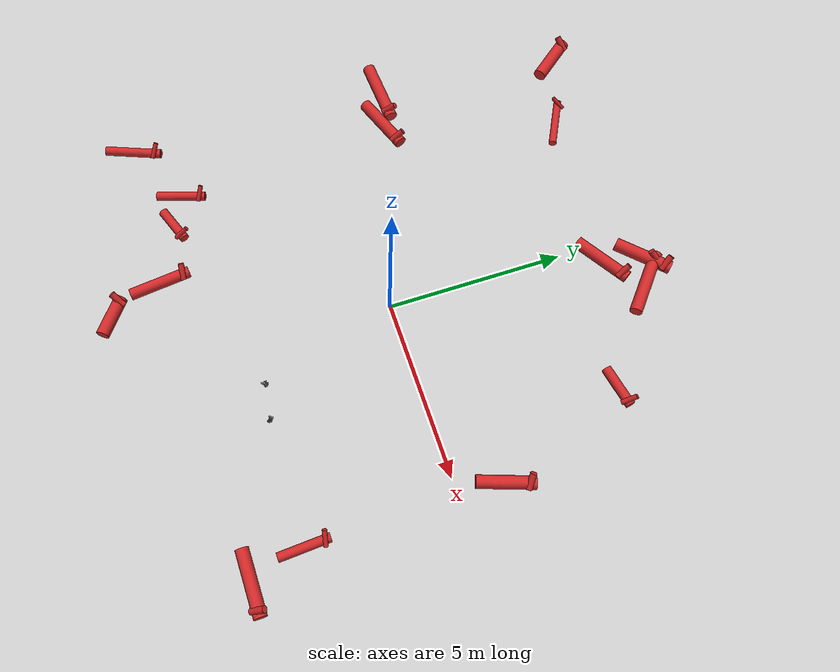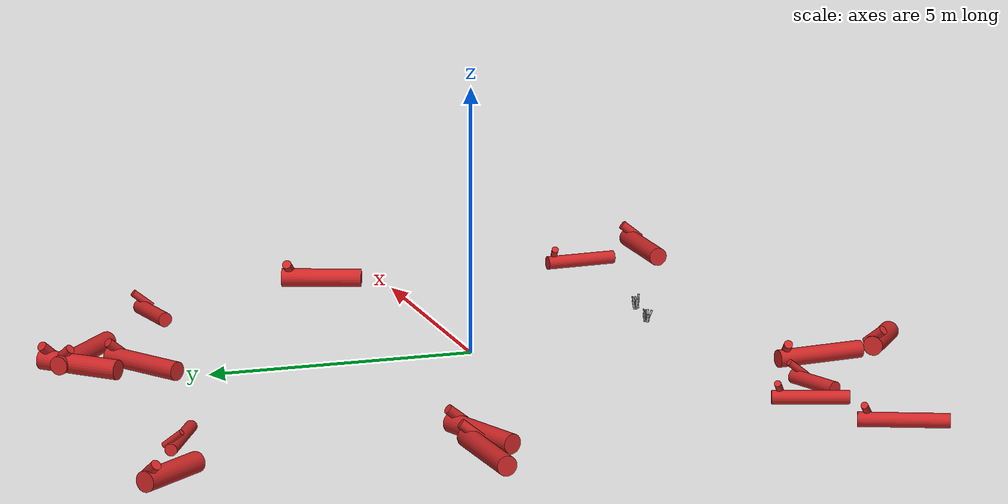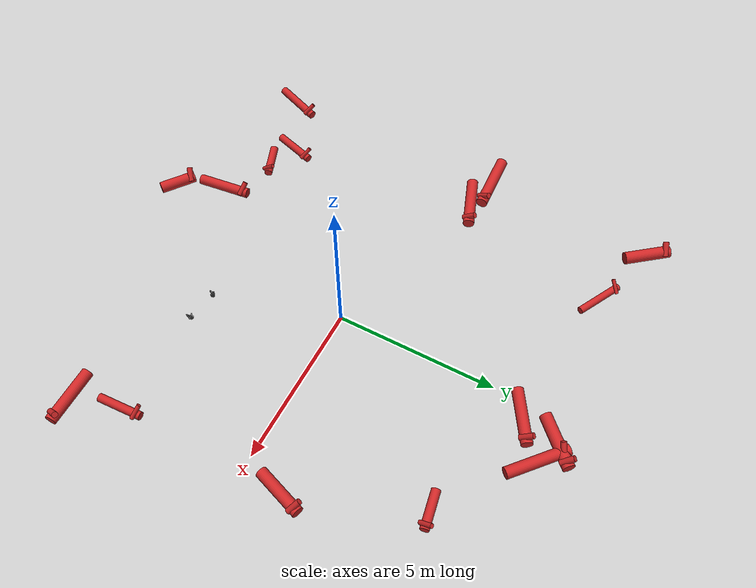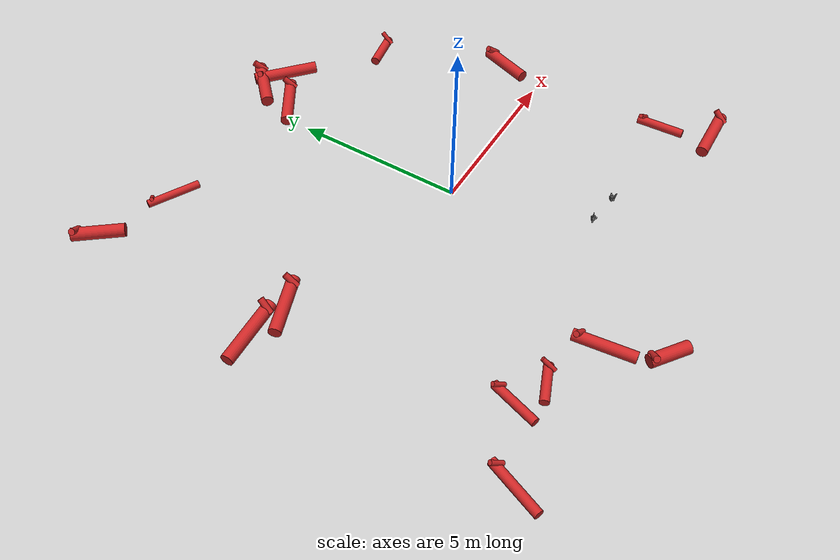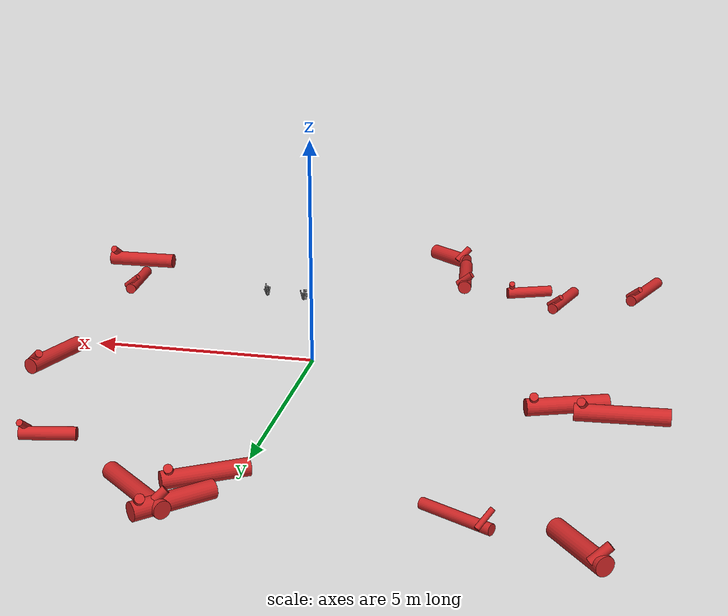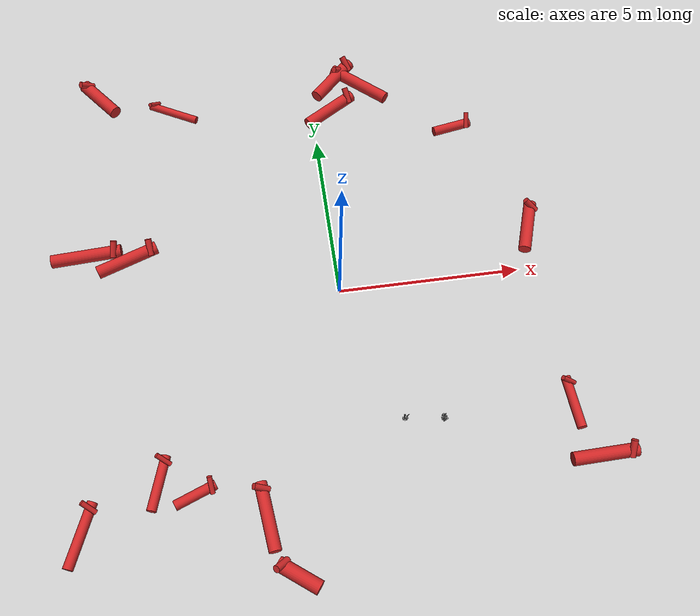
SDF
<sdf version="1.6">
 <world name="default">
  <model name="log_5">
   <static>true</static>
   <link name="log">
    <pose>-1.9669 -7.3263 0.1833 0 1.5708 2.5035</pose>
    <visual name="log_v">
     <geometry><cylinder><radius>0.1833</radius><length>1.1487</length></cylinder></geometry>
     <material>
      <script>
       <uri>model://bushfire/materials/scripts</uri>
       <uri>model://bushfire/materials/textures</uri>
       <name>Bushfire/CharredLog</name>
      </script>
     </material>
    </visual>
   </link>
   <link name="stub">
    <pose>-2.3360 -7.0526 0.3433 0 0.900 3.804</pose>
    <visual name="stub_v">
     <geometry><cylinder><radius>0.0917</radius><length>0.4500</length></cylinder></geometry>
     <material>
      <script>
       <uri>model://bushfire/materials/scripts</uri>
       <uri>model://bushfire/materials/textures</uri>
       <name>Bushfire/CharredLog</name>
      </script>
     </material>
    </visual>
   </link>
  </model>
  <model name="log_6">
   <static>true</static>
   <link name="log">
    <pose>-2.5636 -5.8712 0.1616 0 1.5708 1.6894</pose>
    <visual name="log_v">
     <geometry><cylinder><radius>0.1616</radius><length>1.6964</length></cylinder></geometry>
     <material>
      <script>
       <uri>model://bushfire/materials/scripts</uri>
       <uri>model://bushfire/materials/textures</uri>
       <name>Bushfire/CharredLog</name>
      </script>
     </material>
    </visual>
   </link>
   <link name="stub">
    <pose>-2.6439 -5.1974 0.3216 0 0.900 2.989</pose>
    <visual name="stub_v">
     <geometry><cylinder><radius>0.0808</radius><length>0.4500</length></cylinder></geometry>
     <material>
      <script>
       <uri>model://bushfire/materials/scripts</uri>
       <uri>model://bushfire/materials/textures</uri>
       <name>Bushfire/CharredLog</name>
      </script>
     </material>
    </visual>
   </link>
  </model>
  <model name="log_7">
   <static>true</static>
   <link name="log">
    <pose>-6.8571 1.9072 0.1817 0 1.5708 0.0544</pose>
    <visual name="log_v">
     <geometry><cylinder><radius>0.1817</radius><length>1.9319</length></cylinder></geometry>
     <material>
      <script>
       <uri>model://bushfire/materials/scripts</uri>
       <uri>model://bushfire/materials/textures</uri>
       <name>Bushfire/CharredLog</name>
      </script>
     </material>
    </visual>
   </link>
   <link name="stub">
    <pose>-6.0854 1.9492 0.3417 0 0.900 1.354</pose>
    <visual name="stub_v">
     <geometry><cylinder><radius>0.0909</radius><length>0.4500</length></cylinder></geometry>
     <material>
      <script>
       <uri>model://bushfire/materials/scripts</uri>
       <uri>model://bushfire/materials/textures</uri>
       <name>Bushfire/CharredLog</name>
      </script>
     </material>
    </visual>
   </link>
  </model>
  <model name="log_8">
   <static>true</static>
   <link name="log">
    <pose>-6.4096 7.3956 0.1870 0 1.5708 2.2409</pose>
    <visual name="log_v">
     <geometry><cylinder><radius>0.1870</radius><length>1.4599</length></cylinder></geometry>
     <material>
      <script>
       <uri>model://bushfire/materials/scripts</uri>
       <uri>model://bushfire/materials/textures</uri>
       <name>Bushfire/CharredLog</name>
      </script>
     </material>
    </visual>
   </link>
   <link name="stub">
    <pose>-6.7723 7.8533 0.3470 0 0.900 3.541</pose>
    <visual name="stub_v">
     <geometry><cylinder><radius>0.0935</radius><length>0.4500</length></cylinder></geometry>
     <material>
      <script>
       <uri>model://bushfire/materials/scripts</uri>
       <uri>model://bushfire/materials/textures</uri>
       <name>Bushfire/CharredLog</name>
      </script>
     </material>
    </visual>
   </link>
  </model>
  <model name="log_9">
   <static>true</static>
   <link name="log">
    <pose>5.5512 1.2473 0.1745 0 1.5708 1.2396</pose>
    <visual name="log_v">
     <geometry><cylinder><radius>0.1745</radius><length>1.5345</length></cylinder></geometry>
     <material>
      <script>
       <uri>model://bushfire/materials/scripts</uri>
       <uri>model://bushfire/materials/textures</uri>
       <name>Bushfire/CharredLog</name>
      </script>
     </material>
    </visual>
   </link>
   <link name="stub">
    <pose>5.7508 1.8277 0.3345 0 0.900 2.540</pose>
    <visual name="stub_v">
     <geometry><cylinder><radius>0.0873</radius><length>0.4500</length></cylinder></geometry>
     <material>
      <script>
       <uri>model://bushfire/materials/scripts</uri>
       <uri>model://bushfire/materials/textures</uri>
       <name>Bushfire/CharredLog</name>
      </script>
     </material>
    </visual>
   </link>
  </model>
  <model name="log_10">
   <static>true</static>
   <link name="log">
    <pose>0.5309 6.0832 0.1753 0 1.5708 0.5542</pose>
    <visual name="log_v">
     <geometry><cylinder><radius>0.1753</radius><length>1.6876</length></cylinder></geometry>
     <material>
      <script>
       <uri>model://bushfire/materials/scripts</uri>
       <uri>model://bushfire/materials/textures</uri>
       <name>Bushfire/CharredLog</name>
      </script>
     </material>
    </visual>
   </link>
   <link name="stub">
    <pose>1.1049 6.4384 0.3353 0 0.900 1.854</pose>
    <visual name="stub_v">
     <geometry><cylinder><radius>0.0877</radius><length>0.4500</length></cylinder></geometry>
     <material>
      <script>
       <uri>model://bushfire/materials/scripts</uri>
       <uri>model://bushfire/materials/textures</uri>
       <name>Bushfire/CharredLog</name>
      </script>
     </material>
    </visual>
   </link>
  </model>
  <model name="log_11">
   <static>true</static>
   <link name="log">
    <pose>-4.2658 -5.1156 0.1304 0 1.5708 0.3684</pose>
    <visual name="log_v">
     <geometry><cylinder><radius>0.1304</radius><length>1.1000</length></cylinder></geometry>
     <material>
      <script>
       <uri>model://bushfire/materials/scripts</uri>
       <uri>model://bushfire/materials/textures</uri>
       <name>Bushfire/CharredLog</name>
      </script>
     </material>
    </visual>
   </link>
   <link name="stub">
    <pose>-3.8553 -4.9571 0.2904 0 0.900 1.668</pose>
    <visual name="stub_v">
     <geometry><cylinder><radius>0.0652</radius><length>0.4500</length></cylinder></geometry>
     <material>
      <script>
       <uri>model://bushfire/materials/scripts</uri>
       <uri>model://bushfire/materials/textures</uri>
       <name>Bushfire/CharredLog</name>
      </script>
     </material>
    </visual>
   </link>
  </model>
  <model name="log_12">
   <static>true</static>
   <link name="log">
    <pose>-4.2115 6.6335 0.1105 0 1.5708 2.6506</pose>
    <visual name="log_v">
     <geometry><cylinder><radius>0.1105</radius><length>1.5252</length></cylinder></geometry>
     <material>
      <script>
       <uri>model://bushfire/materials/scripts</uri>
       <uri>model://bushfire/materials/textures</uri>
       <name>Bushfire/CharredLog</name>
      </script>
     </material>
    </visual>
   </link>
   <link name="stub">
    <pose>-4.7495 6.9211 0.2705 0 0.900 3.951</pose>
    <visual name="stub_v">
     <geometry><cylinder><radius>0.0553</radius><length>0.4500</length></cylinder></geometry>
     <material>
      <script>
       <uri>model://bushfire/materials/scripts</uri>
       <uri>model://bushfire/materials/textures</uri>
       <name>Bushfire/CharredLog</name>
      </script>
     </material>
    </visual>
   </link>
  </model>
  <model name="log_13">
   <static>true</static>
   <link name="log">
    <pose>-7.0590 -5.7231 0.1315 0 1.5708 1.1965</pose>
    <visual name="log_v">
     <geometry><cylinder><radius>0.1315</radius><length>1.6297</length></cylinder></geometry>
     <material>
      <script>
       <uri>model://bushfire/materials/scripts</uri>
       <uri>model://bushfire/materials/textures</uri>
       <name>Bushfire/CharredLog</name>
      </script>
     </material>
    </visual>
   </link>
   <link name="stub">
    <pose>-6.8207 -5.1164 0.2915 0 0.900 2.496</pose>
    <visual name="stub_v">
     <geometry><cylinder><radius>0.0658</radius><length>0.4500</length></cylinder></geometry>
     <material>
      <script>
       <uri>model://bushfire/materials/scripts</uri>
       <uri>model://bushfire/materials/textures</uri>
       <name>Bushfire/CharredLog</name>
      </script>
     </material>
    </visual>
   </link>
  </model>
  <model name="log_14">
   <static>true</static>
   <link name="log">
    <pose>4.0979 4.9852 0.1363 0 1.5708 0.1770</pose>
    <visual name="log_v">
     <geometry><cylinder><radius>0.1363</radius><length>1.1338</length></cylinder></geometry>
     <material>
      <script>
       <uri>model://bushfire/materials/scripts</uri>
       <uri>model://bushfire/materials/textures</uri>
       <name>Bushfire/CharredLog</name>
      </script>
     </material>
    </visual>
   </link>
   <link name="stub">
    <pose>4.5444 5.0650 0.2963 0 0.900 1.477</pose>
    <visual name="stub_v">
     <geometry><cylinder><radius>0.0681</radius><length>0.4500</length></cylinder></geometry>
     <material>
      <script>
       <uri>model://bushfire/materials/scripts</uri>
       <uri>model://bushfire/materials/textures</uri>
       <name>Bushfire/CharredLog</name>
      </script>
     </material>
    </visual>
   </link>
  </model>
  <model name="log_15">
   <static>true</static>
   <link name="log">
    <pose>0.7756 7.2132 0.1840 0 1.5708 0.7792</pose>
    <visual name="log_v">
     <geometry><cylinder><radius>0.1840</radius><length>1.6257</length></cylinder></geometry>
     <material>
      <script>
       <uri>model://bushfire/materials/scripts</uri>
       <uri>model://bushfire/materials/textures</uri>
       <name>Bushfire/CharredLog</name>
      </script>
     </material>
    </visual>
   </link>
   <link name="stub">
    <pose>1.2382 7.6701 0.3440 0 0.900 2.079</pose>
    <visual name="stub_v">
     <geometry><cylinder><radius>0.0920</radius><length>0.4500</length></cylinder></geometry>
     <material>
      <script>
       <uri>model://bushfire/materials/scripts</uri>
       <uri>model://bushfire/materials/textures</uri>
       <name>Bushfire/CharredLog</name>
      </script>
     </material>
    </visual>
   </link>
  </model>
  <model name="log_16">
   <static>true</static>
   <link name="log">
    <pose>-5.1460 -4.7084 0.1248 0 1.5708 1.2677</pose>
    <visual name="log_v">
     <geometry><cylinder><radius>0.1248</radius><length>1.3922</length></cylinder></geometry>
     <material>
      <script>
       <uri>model://bushfire/materials/scripts</uri>
       <uri>model://bushfire/materials/textures</uri>
       <name>Bushfire/CharredLog</name>
      </script>
     </material>
    </visual>
   </link>
   <link name="stub">
    <pose>-4.9797 -4.1769 0.2848 0 0.900 2.568</pose>
    <visual name="stub_v">
     <geometry><cylinder><radius>0.0624</radius><length>0.4500</length></cylinder></geometry>
     <material>
      <script>
       <uri>model://bushfire/materials/scripts</uri>
       <uri>model://bushfire/materials/textures</uri>
       <name>Bushfire/CharredLog</name>
      </script>
     </material>
    </visual>
   </link>
  </model>
  <model name="log_17">
   <static>true</static>
   <link name="log">
    <pose>1.5569 6.9540 0.1741 0 1.5708 2.4165</pose>
    <visual name="log_v">
     <geometry><cylinder><radius>0.1741</radius><length>1.9311</length></cylinder></geometry>
     <material>
      <script>
       <uri>model://bushfire/materials/scripts</uri>
       <uri>model://bushfire/materials/textures</uri>
       <name>Bushfire/CharredLog</name>
      </script>
     </material>
    </visual>
   </link>
   <link name="stub">
    <pose>0.9788 7.4664 0.3341 0 0.900 3.716</pose>
    <visual name="stub_v">
     <geometry><cylinder><radius>0.0871</radius><length>0.4500</length></cylinder></geometry>
     <material>
      <script>
       <uri>model://bushfire/materials/scripts</uri>
       <uri>model://bushfire/materials/textures</uri>
       <name>Bushfire/CharredLog</name>
      </script>
     </material>
    </visual>
   </link>
  </model>
  <model name="log_18">
   <static>true</static>
   <link name="log">
    <pose>5.5224 -4.0106 0.1254 0 1.5708 1.6250</pose>
    <visual name="log_v">
     <geometry><cylinder><radius>0.1254</radius><length>1.3755</length></cylinder></geometry>
     <material>
      <script>
       <uri>model://bushfire/materials/scripts</uri>
       <uri>model://bushfire/materials/textures</uri>
       <name>Bushfire/CharredLog</name>
      </script>
     </material>
    </visual>
   </link>
   <link name="stub">
    <pose>5.4926 -3.4612 0.2854 0 0.900 2.925</pose>
    <visual name="stub_v">
     <geometry><cylinder><radius>0.0627</radius><length>0.4500</length></cylinder></geometry>
     <material>
      <script>
       <uri>model://bushfire/materials/scripts</uri>
       <uri>model://bushfire/materials/textures</uri>
       <name>Bushfire/CharredLog</name>
      </script>
     </material>
    </visual>
   </link>
  </model>
  <model name="log_19">
   <static>true</static>
   <link name="log">
    <pose>5.9382 -5.4536 0.1747 0 1.5708 0.0219</pose>
    <visual name="log_v">
     <geometry><cylinder><radius>0.1747</radius><length>1.6830</length></cylinder></geometry>
     <material>
      <script>
       <uri>model://bushfire/materials/scripts</uri>
       <uri>model://bushfire/materials/textures</uri>
       <name>Bushfire/CharredLog</name>
      </script>
     </material>
    </visual>
   </link>
   <link name="stub">
    <pose>6.6113 -5.4389 0.3347 0 0.900 1.322</pose>
    <visual name="stub_v">
     <geometry><cylinder><radius>0.0874</radius><length>0.4500</length></cylinder></geometry>
     <material>
      <script>
       <uri>model://bushfire/materials/scripts</uri>
       <uri>model://bushfire/materials/textures</uri>
       <name>Bushfire/CharredLog</name>
      </script>
     </material>
    </visual>
   </link>
  </model>
  <model name="log_20">
   <static>true</static>
   <link name="log">
    <pose>-5.7366 1.6409 0.1790 0 1.5708 0.3496</pose>
    <visual name="log_v">
     <geometry><cylinder><radius>0.1790</radius><length>1.7365</length></cylinder></geometry>
     <material>
      <script>
       <uri>model://bushfire/materials/scripts</uri>
       <uri>model://bushfire/materials/textures</uri>
       <name>Bushfire/CharredLog</name>
      </script>
     </material>
    </visual>
   </link>
   <link name="stub">
    <pose>-5.0841 1.8788 0.3390 0 0.900 1.650</pose>
    <visual name="stub_v">
     <geometry><cylinder><radius>0.0895</radius><length>0.4500</length></cylinder></geometry>
     <material>
      <script>
       <uri>model://bushfire/materials/scripts</uri>
       <uri>model://bushfire/materials/textures</uri>
       <name>Bushfire/CharredLog</name>
      </script>
     </material>
    </visual>
   </link>
  </model>
  <model name="tussocks">
   <static>true</static>
   <link name="tuft112_0">
    <pose>1.1059 -3.8414 0.0704 0 0.1322 3.4802</pose>
    <visual name="tuft112_0_v">
     <geometry><cylinder><radius>0.0174</radius><length>0.1530</length></cylinder></geometry>
     <material>
      <script>
       <uri>model://bushfire/materials/scripts</uri>
       <uri>model://bushfire/materials/textures</uri>
       <name>Bushfire/Tussock</name>
      </script>
     </material>
    </visual>
   </link>
   <link name="tuft112_1">
    <pose>1.2210 -3.8138 0.1118 0 0.2141 0.1512</pose>
    <visual name="tuft112_1_v">
     <geometry><cylinder><radius>0.0113</radius><length>0.2431</length></cylinder></geometry>
     <material>
      <script>
       <uri>model://bushfire/materials/scripts</uri>
       <uri>model://bushfire/materials/textures</uri>
       <name>Bushfire/Foliage2</name>
      </script>
     </material>
    </visual>
   </link>
   <link name="tuft112_2">
    <pose>1.1145 -3.8649 0.0671 0 0.1627 3.9242</pose>
    <visual name="tuft112_2_v">
     <geometry><cylinder><radius>0.0180</radius><length>0.1459</length></cylinder></geometry>
     <material>
      <script>
       <uri>model://bushfire/materials/scripts</uri>
       <uri>model://bushfire/materials/textures</uri>
       <name>Bushfire/Tussock</name>
      </script>
     </material>
    </visual>
   </link>
   <link name="tuft112_3">
    <pose>1.1509 -3.8204 0.1146 0 0.2437 2.5502</pose>
    <visual name="tuft112_3_v">
     <geometry><cylinder><radius>0.0112</radius><length>0.2492</length></cylinder></geometry>
     <material>
      <script>
       <uri>model://bushfire/materials/scripts</uri>
       <uri>model://bushfire/materials/textures</uri>
       <name>Bushfire/Tussock</name>
      </script>
     </material>
    </visual>
   </link>
   <link name="tuft112_4">
    <pose>1.1439 -3.8925 0.1054 0 0.3923 4.5394</pose>
    <visual name="tuft112_4_v">
     <geometry><cylinder><radius>0.0197</radius><length>0.2292</length></cylinder></geometry>
     <material>
      <script>
       <uri>model://bushfire/materials/scripts</uri>
       <uri>model://bushfire/materials/textures</uri>
       <name>Bushfire/Foliage2</name>
      </script>
     </material>
    </visual>
   </link>
   <link name="tuft112_5">
    <pose>1.1621 -3.7864 0.0793 0 0.1197 1.4069</pose>
    <visual name="tuft112_5_v">
     <geometry><cylinder><radius>0.0130</radius><length>0.1723</length></cylinder></geometry>
     <material>
      <script>
       <uri>model://bushfire/materials/scripts</uri>
       <uri>model://bushfire/materials/textures</uri>
       <name>Bushfire/Foliage2</name>
      </script>
     </material>
    </visual>
   </link>
   <link name="tuft112_6">
    <pose>1.1612 -3.8470 0.1107 0 0.1399 4.9358</pose>
    <visual name="tuft112_6_v">
     <geometry><cylinder><radius>0.0196</radius><length>0.2407</length></cylinder></geometry>
     <material>
      <script>
       <uri>model://bushfire/materials/scripts</uri>
       <uri>model://bushfire/materials/textures</uri>
       <name>Bushfire/Foliage2</name>
      </script>
     </material>
    </visual>
   </link>
   <link name="tuft112_7">
    <pose>1.1298 -3.8443 0.0659 0 0.3992 3.8084</pose>
    <visual name="tuft112_7_v">
     <geometry><cylinder><radius>0.0179</radius><length>0.1433</length></cylinder></geometry>
     <material>
      <script>
       <uri>model://bushfire/materials/scripts</uri>
       <uri>model://bushfire/materials/textures</uri>
       <name>Bushfire/Foliage2</name>
      </script>
     </material>
    </visual>
   </link>
   <link name="tuft112_8">
    <pose>1.2043 -3.8690 0.0691 0 0.1098 5.5309</pose>
    <visual name="tuft112_8_v">
     <geometry><cylinder><radius>0.0153</radius><length>0.1501</length></cylinder></geometry>
     <material>
      <script>
       <uri>model://bushfire/materials/scripts</uri>
       <uri>model://bushfire/materials/textures</uri>
       <name>Bushfire/Tussock</name>
      </script>
     </material>
    </visual>
   </link>
   <link name="tuft154_0">
    <pose>2.1632 -4.0086 0.1112 0 0.3760 5.5935</pose>
    <visual name="tuft154_0_v">
     <geometry><cylinder><radius>0.0159</radius><length>0.2418</length></cylinder></geometry>
     <material>
      <script>
       <uri>model://bushfire/materials/scripts</uri>
       <uri>model://bushfire/materials/textures</uri>
       <name>Bushfire/Foliage2</name>
      </script>
     </material>
    </visual>
   </link>
   <link name="tuft154_1">
    <pose>2.1316 -3.9343 0.1082 0 0.1947 1.5924</pose>
    <visual name="tuft154_1_v">
     <geometry><cylinder><radius>0.0172</radius><length>0.2353</length></cylinder></geometry>
     <material>
      <script>
       <uri>model://bushfire/materials/scripts</uri>
       <uri>model://bushfire/materials/textures</uri>
       <name>Bushfire/Foliage2</name>
      </script>
     </material>
    </visual>
   </link>
   <link name="tuft154_2">
    <pose>2.1576 -4.0186 0.0657 0 0.1539 5.3299</pose>
    <visual name="tuft154_2_v">
     <geometry><cylinder><radius>0.0177</radius><length>0.1429</length></cylinder></geometry>
     <material>
      <script>
       <uri>model://bushfire/materials/scripts</uri>
       <uri>model://bushfire/materials/textures</uri>
       <name>Bushfire/Tussock</name>
      </script>
     </material>
    </visual>
   </link>
   <link name="tuft154_3">
    <pose>2.1827 -3.9625 0.0714 0 0.3759 0.3956</pose>
    <visual name="tuft154_3_v">
     <geometry><cylinder><radius>0.0153</radius><length>0.1551</length></cylinder></geometry>
     <material>
      <script>
       <uri>model://bushfire/materials/scripts</uri>
       <uri>model://bushfire/materials/textures</uri>
       <name>Bushfire/Tussock</name>
      </script>
     </material>
    </visual>
   </link>
   <link name="tuft154_4">
    <pose>2.1183 -3.9155 0.0729 0 0.2378 1.7791</pose>
    <visual name="tuft154_4_v">
     <geometry><cylinder><radius>0.0165</radius><length>0.1585</length></cylinder></geometry>
     <material>
      <script>
       <uri>model://bushfire/materials/scripts</uri>
       <uri>model://bushfire/materials/textures</uri>
       <name>Bushfire/Foliage2</name>
      </script>
     </material>
    </visual>
   </link>
   <link name="tuft154_5">
    <pose>2.0950 -3.9763 0.0959 0 0.1949 2.9567</pose>
    <visual name="tuft154_5_v">
     <geometry><cylinder><radius>0.0192</radius><length>0.2084</length></cylinder></geometry>
     <material>
      <script>
       <uri>model://bushfire/materials/scripts</uri>
       <uri>model://bushfire/materials/textures</uri>
       <name>Bushfire/Foliage2</name>
      </script>
     </material>
    </visual>
   </link>
   <link name="tuft154_6">
    <pose>2.1043 -3.9511 0.0826 0 0.1576 2.2909</pose>
    <visual name="tuft154_6_v">
     <geometry><cylinder><radius>0.0111</radius><length>0.1796</length></cylinder></geometry>
     <material>
      <script>
       <uri>model://bushfire/materials/scripts</uri>
       <uri>model://bushfire/materials/textures</uri>
       <name>Bushfire/Tussock</name>
      </script>
     </material>
    </visual>
   </link>
   <link name="tuft154_7">
    <pose>2.1349 -3.9698 0.0853 0 0.1322 1.4049</pose>
    <visual name="tuft154_7_v">
     <geometry><cylinder><radius>0.0129</radius><length>0.1854</length></cylinder></geometry>
     <material>
      <script>
       <uri>model://bushfire/materials/scripts</uri>
       <uri>model://bushfire/materials/textures</uri>
       <name>Bushfire/Tussock</name>
      </script>
     </material>
    </visual>
   </link>
   <link name="tuft154_8">
    <pose>2.1309 -3.9790 0.1146 0 0.3716 1.9491</pose>
    <visual name="tuft154_8_v">
     <geometry><cylinder><radius>0.0194</radius><length>0.2492</length></cylinder></geometry>
     <material>
      <script>
       <uri>model://bushfire/materials/scripts</uri>
       <uri>model://bushfire/materials/textures</uri>
       <name>Bushfire/Tussock</name>
      </script>
     </material>
    </visual>
   </link>
   <link name="tuft154_9">
    <pose>2.1671 -3.9333 0.1090 0 0.2290 0.9676</pose>
    <visual name="tuft154_9_v">
     <geometry><cylinder><radius>0.0120</radius><length>0.2369</length></cylinder></geometry>
     <material>
      <script>
       <uri>model://bushfire/materials/scripts</uri>
       <uri>model://bushfire/materials/textures</uri>
       <name>Bushfire/Foliage2</name>
      </script>
     </material>
    </visual>
   </link>
   <link name="tuft154_10">
    <pose>2.1802 -4.0309 0.1230 0 0.1943 5.4983</pose>
    <visual name="tuft154_10_v">
     <geometry><cylinder><radius>0.0180</radius><length>0.2674</length></cylinder></geometry>
     <material>
      <script>
       <uri>model://bushfire/materials/scripts</uri>
       <uri>model://bushfire/materials/textures</uri>
       <name>Bushfire/Tussock</name>
      </script>
     </material>
    </visual>
   </link>
   <link name="tuft154_11">
    <pose>2.1365 -3.9879 0.0985 0 0.4066 5.4257</pose>
    <visual name="tuft154_11_v">
     <geometry><cylinder><radius>0.0153</radius><length>0.2141</length></cylinder></geometry>
     <material>
      <script>
       <uri>model://bushfire/materials/scripts</uri>
       <uri>model://bushfire/materials/textures</uri>
       <name>Bushfire/Foliage2</name>
      </script>
     </material>
    </visual>
   </link>
  </model>
 </world>
</sdf>
